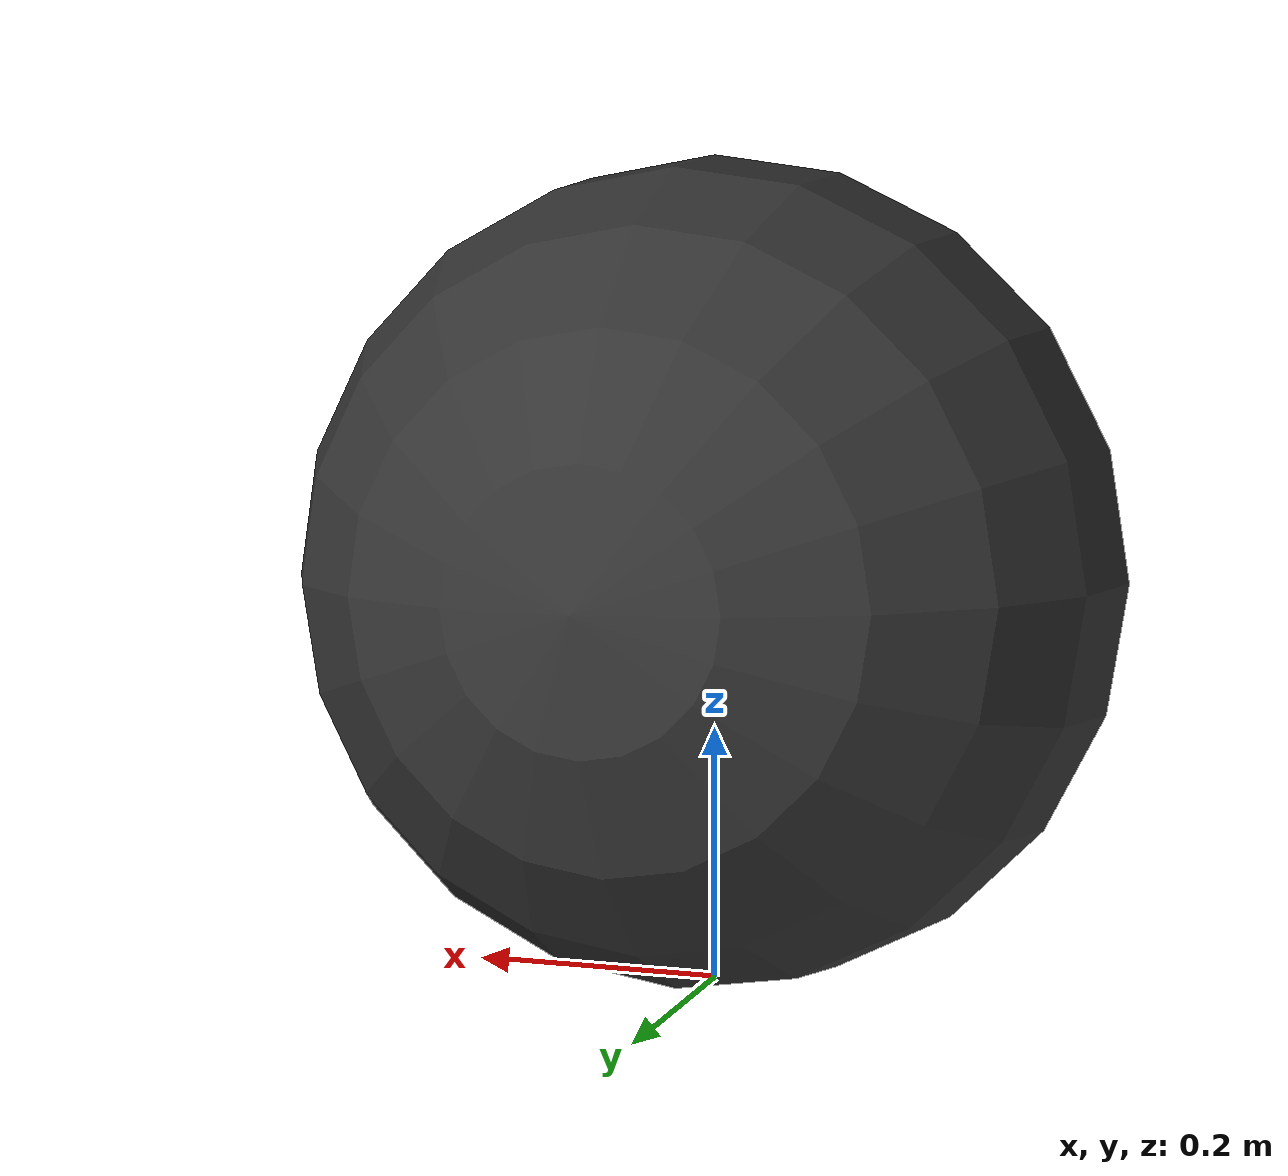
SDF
<?xml version='1.0' ?>
<sdf version='1.6'>
  <model name='simple_collision_world'>
    <pose>0 0 0 0 0 0</pose>

    <link name='cylinder'>
      <pose>0.0 0.0 0.323342 1.570796326794897 0.0 0.0 </pose>
      <inertial>
        <mass>60</mass>
        <inertia>
          <ixx>0.499912</ixx>
          <ixy>0</ixy>
          <ixz>0</ixz>
          <iyy>0.778439</iyy>
          <iyz>0</iyz>
          <izz>0.499912</izz>
        </inertia>
      </inertial>

      <visual name='wheel_a'>
        <pose>0 0 0.0 0 0 0</pose>
        <geometry>
	  <sphere>
            <radius>0.323342</radius>
	  </sphere>
        </geometry>
        <material>
          <diffuse>0.2 0.2 0.2 1</diffuse>
        </material>
      </visual>

      <collision name='wheel_a'>
        <pose>0 0 0.0 0 0 0</pose>
        <geometry>
	  <sphere>
            <radius>0.323342</radius>
	  </sphere>
        </geometry>
      </collision>

    </link>

  </model>
</sdf>
